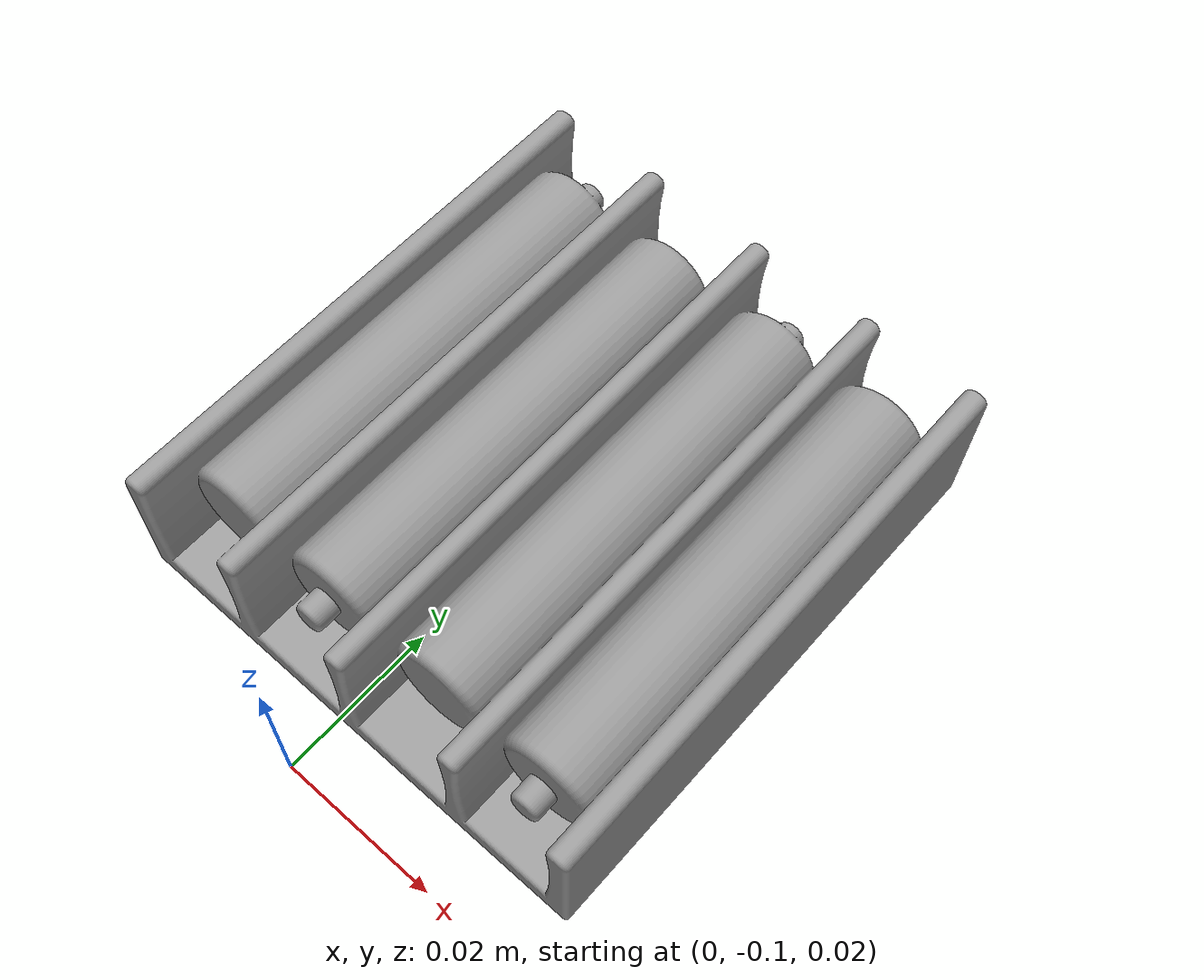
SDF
<?xml version="1.0" ?>
<sdf version="1.5">
  <model name="battery_pack">
    <pose>0 -0.057 0.025 0 0 0</pose>
    <link name="link">
      <inertial>
        <mass>0.1</mass>
        <inertia>
          <ixx>0.0001</ixx>
          <ixy>0</ixy>
          <ixz>0</ixz>
          <iyy>0.0001</iyy>
          <iyz>0</iyz>
          <izz>0.0001</izz>
        </inertia>
      </inertial>
      <collision name="collision">
        <pose>0 0 0.000 1.57079632679 0 0</pose>
        <geometry>
          <box>
            <size>0.065 0.018 0.07</size>
          </box>
        </geometry>
      </collision>
      <visual name="visual">
        <pose>0 0 0.003 1.57079632679 0 0</pose>
        <geometry>
          <mesh>
            <uri>model://battery_pack/meshes/battery_pack.dae</uri>
            <scale>0.001 0.001 0.001</scale>
          </mesh>
        </geometry>
        <material>
          <script>
            <uri>file://media/materials/scripts/gazebo.material</uri>
            <name>Gazebo/Grey</name>
          </script>
        </material>
      </visual>
    </link>
    <plugin filename="libPowerSourcePlugin.so" name="battery">
      <port>
        <name>positive</name>
        <type>electrical</type>
      </port>
      <port>
        <name>negative</name>
        <type>electrical</type>
      </port>
      <properties>
        <voltage>6.0</voltage>   <!-- Volts -->
       <capacity>0.30</capacity> <!-- Amp-hours  -->
        <current>0.1</current>   <!-- Amps -->
      </properties>
    </plugin>
  </model>
</sdf>
